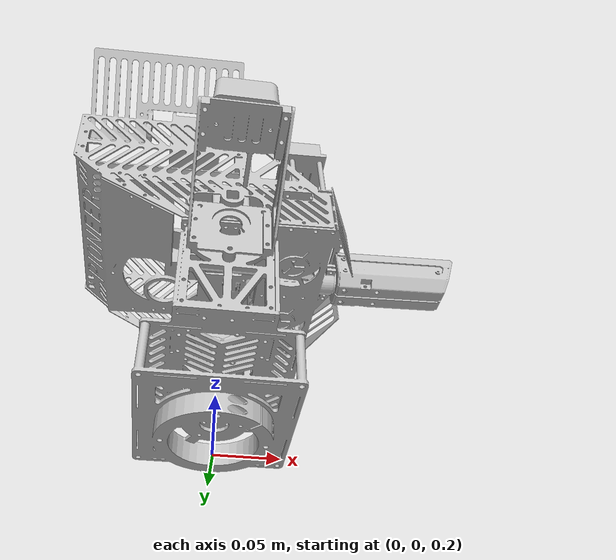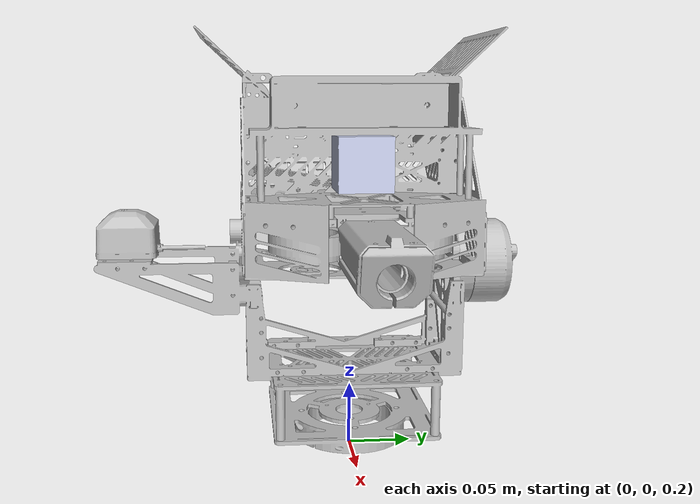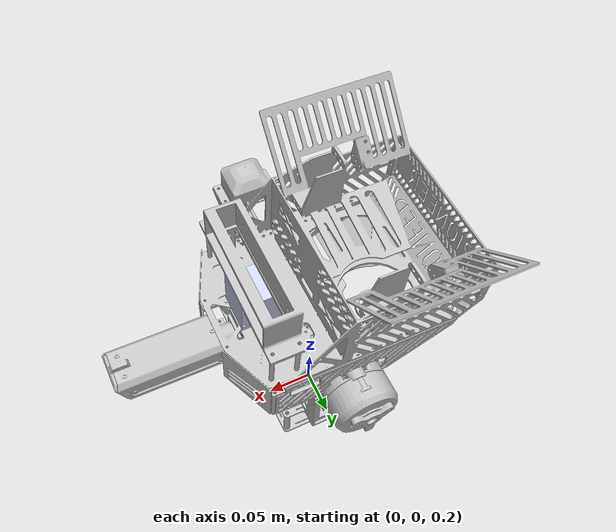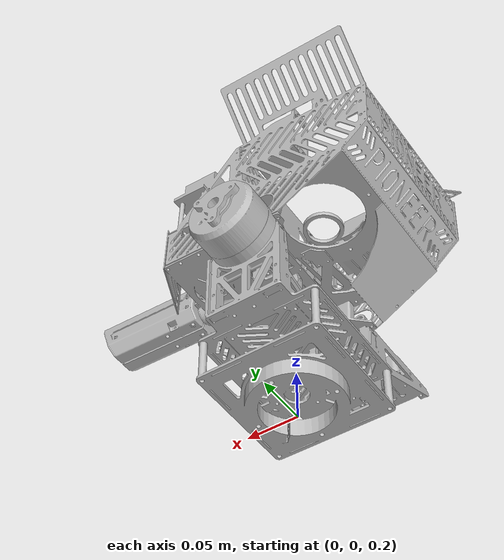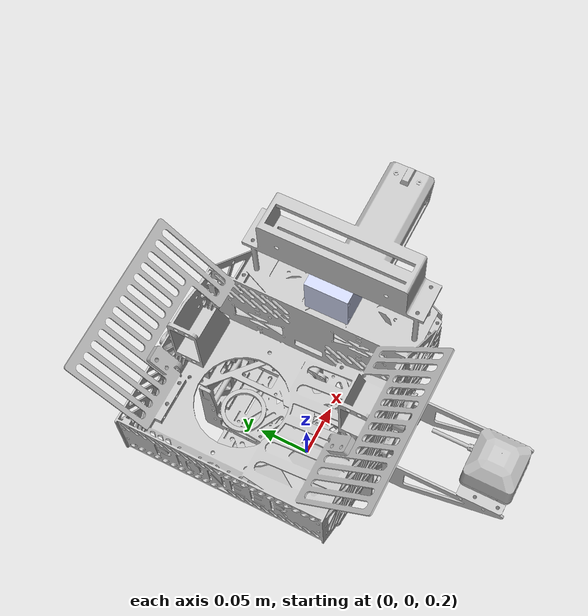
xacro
<?xml version="1.0" encoding="utf-8"?>

<robot name="gimbal_top"
  xmlns:xacro="http://ros.org/wiki/xacro">

  <link name="base_link"/>

  <link name="top_base_link"/>

    <joint name="top_base_joint" type="fixed">
    <origin xyz="0 0 0.209" rpy="0 0 0" />
    <parent link="base_link" />
    <child link="top_base_link" />
  </joint>

  <link name="top_yaw_link">
    <inertial>
      <origin xyz="4.99730350969618E-05 -0.0371160196675906 0.2981641393412612" rpy="0 0 0" />
      <mass value="0.947656687074583" />
      <inertia ixx="0.000784086432942086" ixy="-3.16001756196907E-06" ixz="1.03582436091895E-07" iyy="0.000601598563322982" iyz="1.02619280734409E-06" izz="0.00109566735411014" />
    </inertial>
    <visual>
      <origin xyz="0 0 0" rpy="0 0 0" />
      <geometry>
        <mesh filename="package://rm_pioneer_description/meshes/yaw_link.STL" />
      </geometry>
      <material name="">
        <color rgba="0.75294 0.75294 0.75294 1" />
      </material>
    </visual>
    <collision>
      <origin xyz="0 0 0" rpy="0 0 0" />
      <geometry>
        <mesh filename="package://rm_pioneer_description/meshes/yaw_link.STL" />
      </geometry>
    </collision>
  </link>

  <joint name="top_yaw_joint" type="continuous">
    <origin xyz="0 0 0" rpy="0 0 0" />
    <parent link="top_base_link" />
    <child link="top_yaw_link" />
    <axis xyz="0 0 1" />
  </joint>

  <link name="top_pitch_link">
    <inertial>
      <origin xyz="0.176021881831549 0.00064155983644746 0.2906588578976584" rpy="0 0 0" />
      <mass value="5.41927484176401" />
      <inertia ixx="0" ixy="0" ixz="0" iyy="0" iyz="0" izz="0" />
    </inertial>
    <visual>
      <origin xyz="0 0 0" rpy="0 0 0" />
      <geometry>
        <mesh filename="package://rm_pioneer_description/meshes/pitch_link.STL" />
      </geometry>
      <material name="">
        <color rgba="0.75294 0.75294 0.75294 1" />
      </material>
    </visual>
    <collision>
      <origin xyz="0 0 0" rpy="0 0 0" />
      <geometry>
        <mesh filename="package://rm_pioneer_description/meshes/pitch_link.STL" />
      </geometry>
    </collision>
  </link>

  <joint name="top_pitch_joint" type="revolute">
    <origin xyz="0 0 0.168199999999992" rpy="0 -0.0349965560561934 0" />
    <parent link="top_yaw_link" />
    <child link="top_pitch_link" />
    <axis xyz="0 1 0" />
    <limit lower="-0.6" upper="0.5" effort="1.2" velocity="31"/>
  </joint>

  <link name="top_shooter_link" />

  <joint name="top_shooter_joint" type="fixed">
    <origin xyz="0 0 0.168199999999992" rpy="0 0 0" />
    <origin xyz="0 0 0.163" rpy="0-0.55149 0" />
    <parent link="top_base_link" />
    <child link="top_shooter_link" />
  </joint>

  <link name="top_camera_base_link">
    <inertial>
      <origin xyz="-0.0225000000000001 3.46944695195361E-17 0.209" rpy="0 0 0" />
      <mass value="0.0671107341840939" />
      <inertia ixx="1.69723021394276E-05" ixy="3.89796965559563E-21" ixz="-7.94093388050907E-22" iyy="1.94707683734004E-05" iyz="4.45518745096134E-21" izz="1.95110373496406E-05" />
    </inertial>
    <visual>
      <origin xyz="0 0 0" rpy="0 0 0" />
      <geometry>
        <mesh filename="package://rm_pioneer_description/meshes/camera_base_link.STL" />
      </geometry>
      <material name="">
        <color rgba="0.79216 0.81961 0.93333 1" />
      </material>
    </visual>
    <collision>
      <origin xyz="0 0 0" rpy="0 0 0" />
      <geometry>
        <mesh filename="package://rm_pioneer_description/meshes/camera_base_link.STL" />
      </geometry>
    </collision>
  </link>

  <joint name="top_camera_base_joint" type="fixed">
    <origin xyz="0.0866999999999996 0 0.0570000000000017" rpy="0 0 0" />
    <parent link="top_pitch_link" />
    <child link="top_camera_base_link" />
    <axis xyz="0 0 0" />
  </joint>

  <link name="top_camera_optical_frame" />

  <joint name="top_camera_optical_joint" type="fixed">
    <origin xyz="0 0 0" rpy="${-pi/2} 0 ${-pi/2}" />
    <parent link="top_camera_base_link" />
    <child link="top_camera_optical_frame" />
  </joint>

</robot>
